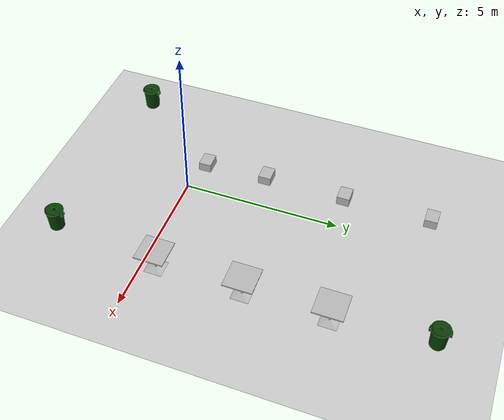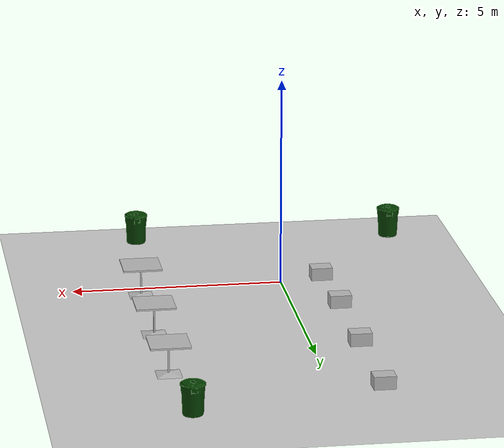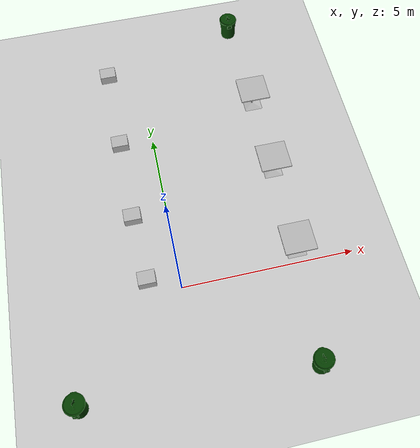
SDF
<sdf version="1.6">
 <world name="default">
  <light name="sun" type="directional">
   <pose>0 0 10 0 -0 0</pose>
   <diffuse>0.8 0.8 0.8 1</diffuse>
   <specular>0.2 0.2 0.2 1</specular>
   <attenuation>
    <range>1000</range>
    <constant>0.9</constant>
    <linear>0.01</linear>
    <quadratic>0.001</quadratic>
   </attenuation>
   <direction>-0.5 0.1 -0.9</direction>
  </light>
  <model name="ground_plane">
   <static>1</static>
   <link name="link">
    <collision name="collision">
     <geometry><plane><normal>0 0 1</normal><size>100 100</size></plane></geometry>
     <surface>
      <contact><collide_bitmask>65535</collide_bitmask></contact>
      <friction><ode><mu>100</mu><mu2>50</mu2></ode></friction>
     </surface>
    </collision>
    <visual name="visual">
     <cast_shadows>0</cast_shadows>
     <geometry><plane><normal>0 0 1</normal><size>100 100</size></plane></geometry>
     <material>
      <script><uri>file://media/materials/scripts/gazebo.material</uri><name>Gazebo/Grey</name></script>
     </material>
    </visual>
   </link>
  </model>
  <gravity>0 0 -9.8</gravity>
  <magnetic_field>6e-06 2.3e-05 -4.2e-05</magnetic_field>
  <atmosphere type="adiabatic"/>
  <physics name="default_physics" default="0" type="ode">
   <max_step_size>0.001</max_step_size>
   <real_time_factor>1</real_time_factor>
   <real_time_update_rate>1000</real_time_update_rate>
  </physics>
  <scene><ambient>0.4 0.4 0.4 1</ambient><background>0.7 0.7 0.7 1</background><shadows>1</shadows></scene>
  <spherical_coordinates>
   <surface_model>EARTH_WGS84</surface_model>
   <latitude_deg>0</latitude_deg>
   <longitude_deg>0</longitude_deg>
   <elevation>0</elevation>
   <heading_deg>0</heading_deg>
  </spherical_coordinates>
  <model name="cafe_table">
   <static>1</static>
   <link name="link">
    <collision name="surface">
     <pose>0 0 0.755 0 -0 0</pose>
     <geometry><box><size>0.913 0.913 0.04</size></box></geometry>
    </collision>
    <collision name="column">
     <pose>0 0 0.37 0 -0 0</pose>
     <geometry><box><size>0.042 0.042 0.74</size></box></geometry>
    </collision>
    <collision name="base">
     <pose>0 0 0.02 0 -0 0</pose>
     <geometry><box><size>0.56 0.56 0.04</size></box></geometry>
    </collision>
    <visual name="visual">
     <geometry><mesh><uri>model://cafe_table/meshes/cafe_table.dae</uri></mesh></geometry>
    </visual>
   </link>
   <pose>3.4419 5.79686 0 0 -0 0</pose>
  </model>
  <model name="cafe_table_0">
   <static>1</static>
   <link name="link">
    <collision name="surface">
     <pose>0 0 0.755 0 -0 0</pose>
     <geometry><box><size>0.913 0.913 0.04</size></box></geometry>
    </collision>
    <collision name="column">
     <pose>0 0 0.37 0 -0 0</pose>
     <geometry><box><size>0.042 0.042 0.74</size></box></geometry>
    </collision>
    <collision name="base">
     <pose>0 0 0.02 0 -0 0</pose>
     <geometry><box><size>0.56 0.56 0.04</size></box></geometry>
    </collision>
    <visual name="visual">
     <geometry><mesh><uri>model://cafe_table/meshes/cafe_table.dae</uri></mesh></geometry>
    </visual>
   </link>
   <pose>3.4419 3.18667 0 0 -0 0</pose>
  </model>
  <model name="cafe_table_1">
   <static>1</static>
   <link name="link">
    <collision name="surface">
     <pose>0 0 0.755 0 -0 0</pose>
     <geometry><box><size>0.913 0.913 0.04</size></box></geometry>
    </collision>
    <collision name="column">
     <pose>0 0 0.37 0 -0 0</pose>
     <geometry><box><size>0.042 0.042 0.74</size></box></geometry>
    </collision>
    <collision name="base">
     <pose>0 0 0.02 0 -0 0</pose>
     <geometry><box><size>0.56 0.56 0.04</size></box></geometry>
    </collision>
    <visual name="visual">
     <geometry><mesh><uri>model://cafe_table/meshes/cafe_table.dae</uri></mesh></geometry>
    </visual>
   </link>
   <pose>3.42213 0.457837 0 0 -0 0</pose>
  </model>
  <model name="cardboard_box">
   <pose>-0.905408 0.341237 0.3388 0 -0 0</pose>
   <link name="link">
    <inertial>
     <mass>2</mass>
     <inertia>
      <ixx>0.0416667</ixx>
      <ixy>0</ixy>
      <ixz>0</ixz>
      <iyy>0.0566667</iyy>
      <iyz>0</iyz>
      <izz>0.0683333</izz>
     </inertia>
    </inertial>
    <collision name="collision">
     <geometry><box><size>0.5 0.4 0.3</size></box></geometry>
     <surface>
      <friction><ode><mu>1</mu><mu2>1</mu2></ode></friction>
      <contact><ode><kp>1e+07</kp><kd>1</kd><min_depth>0.001</min_depth><max_vel>0.1</max_vel></ode></contact>
     </surface>
    </collision>
    <visual name="visual">
     <pose>0 0 -0.15 0 -0 0</pose>
     <geometry>
      <mesh><uri>model://cardboard_box/meshes/cardboard_box.dae</uri><scale>1.25932 1.00745 0.755591</scale></mesh>
     </geometry>
    </visual>
   </link>
  </model>
  <model name="cardboard_box_0">
   <pose>-1.00817 2.35247 0.3388 0 -0 0</pose>
   <link name="link">
    <inertial>
     <mass>2</mass>
     <inertia>
      <ixx>0.0416667</ixx>
      <ixy>0</ixy>
      <ixz>0</ixz>
      <iyy>0.0566667</iyy>
      <iyz>0</iyz>
      <izz>0.0683333</izz>
     </inertia>
    </inertial>
    <collision name="collision">
     <geometry><box><size>0.5 0.4 0.3</size></box></geometry>
     <surface>
      <friction><ode><mu>1</mu><mu2>1</mu2></ode></friction>
      <contact><ode><kp>1e+07</kp><kd>1</kd><min_depth>0.001</min_depth><max_vel>0.1</max_vel></ode></contact>
     </surface>
    </collision>
    <visual name="visual">
     <pose>0 0 -0.15 0 -0 0</pose>
     <geometry>
      <mesh><uri>model://cardboard_box/meshes/cardboard_box.dae</uri><scale>1.25932 1.00745 0.755591</scale></mesh>
     </geometry>
    </visual>
   </link>
  </model>
  <model name="cardboard_box_1">
   <pose>-1.00817 4.95089 0.3388 0 -0 0</pose>
   <link name="link">
    <inertial>
     <mass>2</mass>
     <inertia>
      <ixx>0.0416667</ixx>
      <ixy>0</ixy>
      <ixz>0</ixz>
      <iyy>0.0566667</iyy>
      <iyz>0</iyz>
      <izz>0.0683333</izz>
     </inertia>
    </inertial>
    <collision name="collision">
     <geometry><box><size>0.5 0.4 0.3</size></box></geometry>
     <surface>
      <friction><ode><mu>1</mu><mu2>1</mu2></ode></friction>
      <contact><ode><kp>1e+07</kp><kd>1</kd><min_depth>0.001</min_depth><max_vel>0.1</max_vel></ode></contact>
     </surface>
    </collision>
    <visual name="visual">
     <pose>0 0 -0.15 0 -0 0</pose>
     <geometry>
      <mesh><uri>model://cardboard_box/meshes/cardboard_box.dae</uri><scale>1.25932 1.00745 0.755591</scale></mesh>
     </geometry>
    </visual>
   </link>
  </model>
  <model name="cardboard_box_2">
   <pose>-1.02285 7.71083 0.3388 0 -0 0</pose>
   <link name="link">
    <inertial>
     <mass>2</mass>
     <inertia>
      <ixx>0.0416667</ixx>
      <ixy>0</ixy>
      <ixz>0</ixz>
      <iyy>0.0566667</iyy>
      <iyz>0</iyz>
      <izz>0.0683333</izz>
     </inertia>
    </inertial>
    <collision name="collision">
     <geometry><box><size>0.5 0.4 0.3</size></box></geometry>
     <surface>
      <friction><ode><mu>1</mu><mu2>1</mu2></ode></friction>
      <contact><ode><kp>1e+07</kp><kd>1</kd><min_depth>0.001</min_depth><max_vel>0.1</max_vel></ode></contact>
     </surface>
    </collision>
    <visual name="visual">
     <pose>0 0 -0.15 0 -0 0</pose>
     <geometry>
      <mesh><uri>model://cardboard_box/meshes/cardboard_box.dae</uri><scale>1.25932 1.00745 0.755591</scale></mesh>
     </geometry>
    </visual>
   </link>
  </model>
  <model name="first_2015_trash_can">
   <link name="link">
    <inertial>
     <pose>0 0 0.3683 0 -0 0</pose>
     <mass>4.83076</mass>
     <inertia>
      <ixx>0.281534</ixx>
      <ixy>0</ixy>
      <ixz>0</ixz>
      <iyy>0.281534</iyy>
      <iyz>0</iyz>
      <izz>0.126223</izz>
     </inertia>
    </inertial>
    <visual name="visual">
     <geometry><mesh><uri>model://first_2015_trash_can/meshes/trash_can.dae</uri></mesh></geometry>
    </visual>
    <collision name="collision">
     <geometry><mesh><uri>model://first_2015_trash_can/meshes/trash_can.dae</uri></mesh></geometry>
    </collision>
   </link>
   <pose>-3.10286 -2.66764 0.189796 -5e-06 -5e-06 -0.007895</pose>
  </model>
  <model name="first_2015_trash_can_0">
   <link name="link">
    <inertial>
     <pose>0 0 0.3683 0 -0 0</pose>
     <mass>4.83076</mass>
     <inertia>
      <ixx>0.281534</ixx>
      <ixy>0</ixy>
      <ixz>0</ixz>
      <iyy>0.281534</iyy>
      <iyz>0</iyz>
      <izz>0.126223</izz>
     </inertia>
    </inertial>
    <visual name="visual">
     <geometry><mesh><uri>model://first_2015_trash_can/meshes/trash_can.dae</uri></mesh></geometry>
    </visual>
    <collision name="collision">
     <geometry><mesh><uri>model://first_2015_trash_can/meshes/trash_can.dae</uri></mesh></geometry>
    </collision>
   </link>
   <pose>3.13636 -2.97592 0.189796 -6e-06 2e-05 -0.008239</pose>
  </model>
  <model name="first_2015_trash_can_1">
   <link name="link">
    <inertial>
     <pose>0 0 0.3683 0 -0 0</pose>
     <mass>4.83076</mass>
     <inertia>
      <ixx>0.281534</ixx>
      <ixy>0</ixy>
      <ixz>0</ixz>
      <iyy>0.281534</iyy>
      <iyz>0</iyz>
      <izz>0.126223</izz>
     </inertia>
    </inertial>
    <visual name="visual">
     <geometry><mesh><uri>model://first_2015_trash_can/meshes/trash_can.dae</uri></mesh></geometry>
    </visual>
    <collision name="collision">
     <geometry><mesh><uri>model://first_2015_trash_can/meshes/trash_can.dae</uri></mesh></geometry>
    </collision>
   </link>
   <pose>3.29778 8.75376 0.189802 -2.3e-05 -4e-06 -0.009181</pose>
  </model>
 </world>
</sdf>
